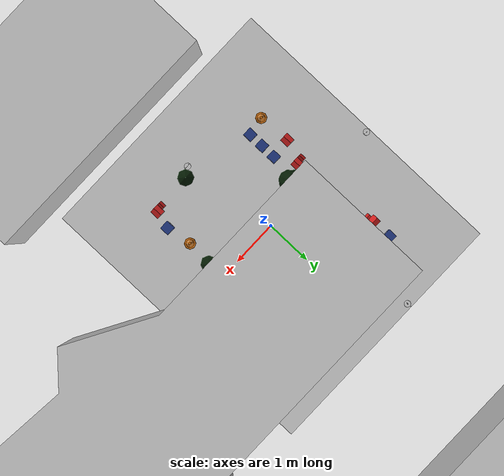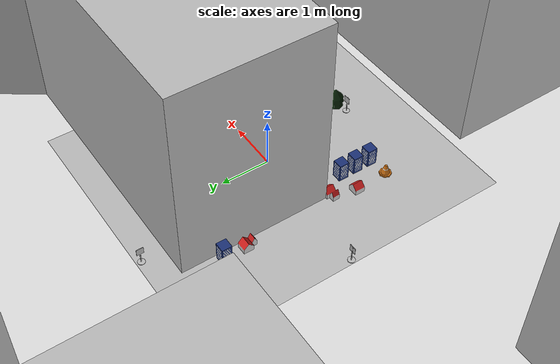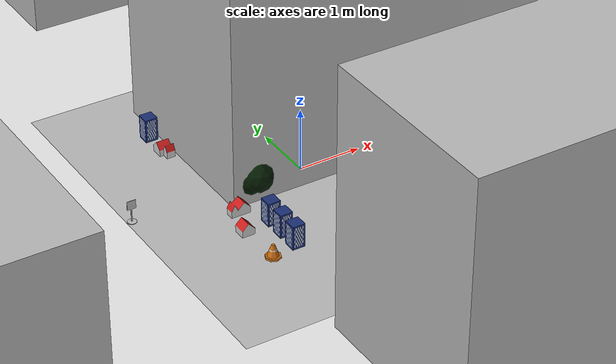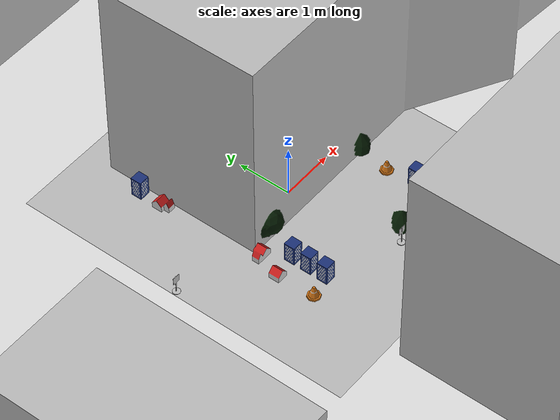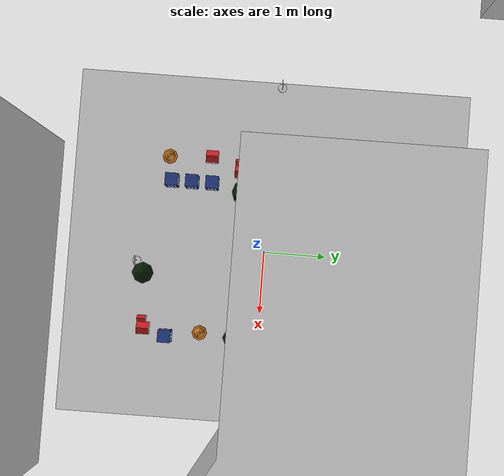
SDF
<sdf version="1.6">
 <world name="yahboom_track_world">
  <physics name="1ms" type="ignored">
   <max_step_size>0.001</max_step_size>
   <real_time_factor>1.0</real_time_factor>
  </physics>
  <plugin filename="ignition-gazebo-contact-system" name="gz::sim::systems::Contact"/>
  <plugin filename="ignition-gazebo-imu-system" name="gz::sim::systems::Imu"/>
  <plugin filename="ignition-gazebo-physics-system" name="gz::sim::systems::Physics"/>
  <plugin filename="ignition-gazebo-scene-broadcaster-system" name="gz::sim::systems::SceneBroadcaster"/>
  <plugin filename="ignition-gazebo-sensors-system" name="gz::sim::systems::Sensors"/>
  <plugin filename="ignition-gazebo-user-commands-system" name="gz::sim::systems::UserCommands"/>
  <spherical_coordinates>
   <surface_model>EARTH_WGS84</surface_model>
   <world_frame_orientation>ENU</world_frame_orientation>
   <latitude_deg>50.088384</latitude_deg>
   <longitude_deg>19.939128</longitude_deg>
   <elevation>0</elevation>
   <heading_deg>0</heading_deg>
  </spherical_coordinates>
  <include><uri>model://YahboomTrack/TrackMap</uri></include>
  <include><uri>model://YahboomTrack/Walls</uri></include>
  <include><uri>model://YahboomTrack/DecoAll</uri></include>
  <include>
   <uri>model://YahboomTrack/SignForward</uri>
   <pose>-2.72 0.1 0.0 0.0 0.0 1.57</pose>
   <name>SignForward_0</name>
  </include>
  <include>
   <uri>model://YahboomTrack/SignRight</uri>
   <pose>-0.75 3.1 0.0 0.0 0.0 0.0</pose>
   <name>SignRight_1</name>
  </include>
  <include>
   <uri>model://YahboomTrack/SignForward</uri>
   <pose>0.28 0.1 0.0 0.0 0.0 -1.57</pose>
   <name>SignForward_2</name>
  </include>
  <include>
   <uri>model://YahboomTrack/SignRight</uri>
   <pose>0.28 -2.07 0.0 0.0 0.0 -1.57</pose>
   <name>SignRight_3</name>
  </include>
  <model name="light">
   <static>true</static>
   <link name="map">
    <light type="directional" name="sun">
     <pose>0 0 10 0 0 0</pose>
     <diffuse>0.8 0.8 0.8 1</diffuse>
     <specular>0.2 0.2 0.2 1</specular>
     <attenuation>
      <range>1000</range>
      <constant>0.9</constant>
      <linear>0.01</linear>
      <quadratic>0.001</quadratic>
     </attenuation>
     <direction>0.0 0.0 0.0</direction>
    </light>
    <collision name="collision">
     <geometry><plane><normal>0 0 1</normal><size>11 11</size></plane></geometry>
    </collision>
   </link>
  </model>
 </world>
</sdf>

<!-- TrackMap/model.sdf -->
<sdf version="1.8">
  <model name="TrackMap">
    <static>true</static>
    <link name="TrackMap">
      <visual name="visual">
        <geometry>
          <mesh>
            <uri>model://YahboomTrack/TrackMap/meshes/TrackMap.dae</uri>
            <scale>2.0 2.0 2.0</scale>
          </mesh>
        </geometry>
      </visual>
      <collision name="visual">
        <geometry>
          <mesh>
            <uri>model://YahboomTrack/TrackMap/meshes/TrackMap.dae</uri>
            <scale>2.0 2.0 2.0</scale>
          </mesh>
        </geometry>
      </collision>
    </link>
  </model>
</sdf>

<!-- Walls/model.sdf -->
<sdf version="1.8">
  <model name="Walls">
    <static>true</static>
    <link name="Walls">
      <visual name="visual">
        <geometry>
          <mesh>
            <uri>model://YahboomTrack/Walls/meshes/Walls.dae</uri>
            <scale>2.0 2.0 2.0</scale>
          </mesh>
        </geometry>
      </visual>
      <collision name="visual">
        <geometry>
          <mesh>
            <uri>model://YahboomTrack/Walls/meshes/Walls.dae</uri>
            <scale>2.0 2.0 2.0</scale>
          </mesh>
        </geometry>
      </collision>
    </link>
  </model>
</sdf>

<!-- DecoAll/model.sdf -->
<sdf version="1.8">
  <model name="DecoAll">
    <static>true</static>
    <link name="DecoAll">
      <visual name="visual">
        <geometry>
          <mesh>
            <uri>model://YahboomTrack/DecoAll/meshes/DecoAll.dae</uri>
            <scale>2.0 2.0 2.0</scale>
          </mesh>
        </geometry>
      </visual>
      <collision name="visual">
        <geometry>
          <mesh>
            <uri>model://YahboomTrack/DecoAll/meshes/DecoAll.dae</uri>
            <scale>2.0 2.0 2.0</scale>
          </mesh>
        </geometry>
      </collision>
    </link>
  </model>
</sdf>

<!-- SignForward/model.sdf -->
<sdf version="1.8">
  <model name="SignForward">
    <static>true</static>
    <link name="SignForward">
      <visual name="visual">
        <geometry>
          <mesh>
            <uri>model://YahboomTrack/SignForward/meshes/SignForward.dae</uri>
            <scale>2.0 2.0 2.0</scale>
          </mesh>
        </geometry>
      </visual>
      <collision name="visual">
        <geometry>
          <mesh>
            <uri>model://YahboomTrack/SignForward/meshes/SignForward.dae</uri>
            <scale>2.0 2.0 2.0</scale>
          </mesh>
        </geometry>
      </collision>
    </link>
  </model>
</sdf>

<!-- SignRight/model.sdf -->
<sdf version="1.8">
  <model name="SignRight">
    <static>true</static>
    <link name="SignRight">
      <visual name="visual">
        <geometry>
          <mesh>
            <uri>model://YahboomTrack/SignRight/meshes/SignRight.dae</uri>
            <scale>2.0 2.0 2.0</scale>
          </mesh>
        </geometry>
      </visual>
      <collision name="visual">
        <geometry>
          <mesh>
            <uri>model://YahboomTrack/SignRight/meshes/SignRight.dae</uri>
            <scale>2.0 2.0 2.0</scale>
          </mesh>
        </geometry>
      </collision>
    </link>
  </model>
</sdf>
